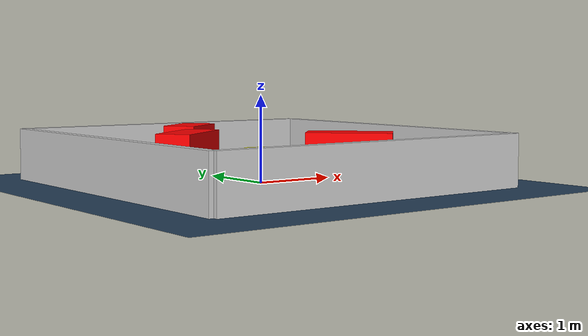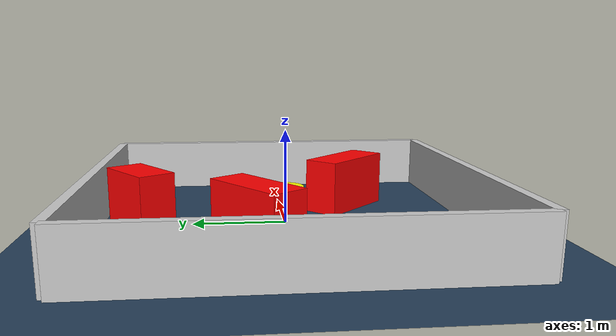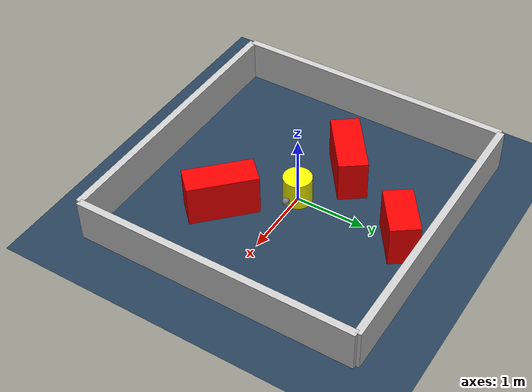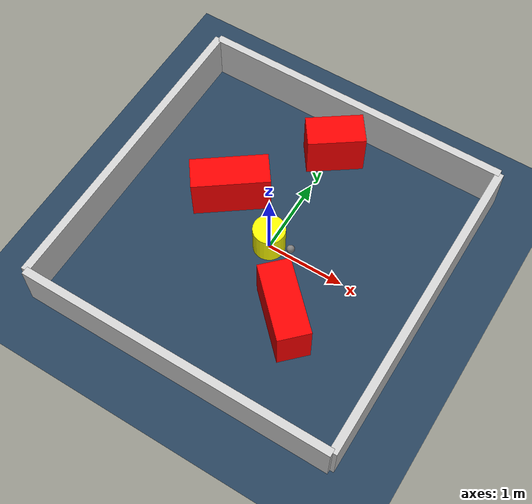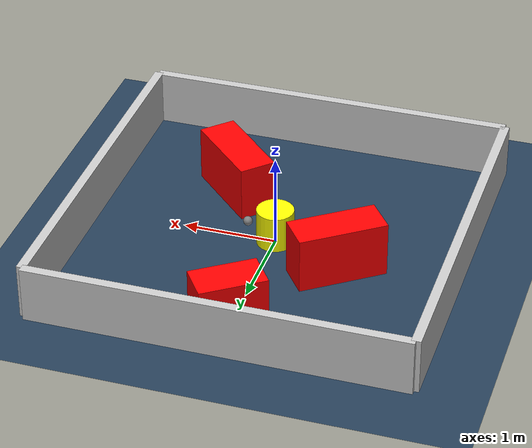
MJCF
<?xml version="1.0" ?>
<mujoco model="generated_environment">
  <option timestep="0.01" integrator="RK4" cone="elliptic"/>
  <default>
    <geom density="1"/>
  </default>
  <asset>
    <texture builtin="gradient" height="3072" rgb1="0.3 0.5 0.7" rgb2="0 0 0" type="skybox" width="512"/>
    <texture builtin="checker" height="300" mark="edge" markrgb="0.8 0.8 0.8" name="groundplane" rgb1="0.2 0.3 0.4" rgb2="0.1 0.2 0.3" type="2d" width="300"/>
    <material name="groundplane" reflectance="0.2" texrepeat="5 5" texture="groundplane" texuniform="true"/>
    <material name="robot" rgba="0.0 1.0 0.0 1"/>
  </asset>
  <worldbody>
    <light dir="0 0 -1" directional="true" pos="0 0 1.5"/>
    <geom condim="4" friction="1.0 0.005 0.001" material="groundplane" name="floor" size="0 0 0.05" type="plane"/>
    <body name="walls">
      <geom name="wall_1" condim="4" pos="-2.0 0.0 0.3" rgba="0.800000011920929 0.800000011920929 0.800000011920929 1.0" size="0.05 2.0 0.3" type="box"/>
      <geom name="wall_2" condim="4" pos="2.0 0.0 0.3" rgba="0.800000011920929 0.800000011920929 0.800000011920929 1.0" size="0.05 2.0 0.3" type="box"/>
      <geom name="wall_3" condim="4" pos="0.0 -2.0 0.3" rgba="0.800000011920929 0.800000011920929 0.800000011920929 1.0" size="2.0 0.05 0.3" type="box"/>
      <geom name="wall_4" condim="4" pos="0.0 2.0 0.3" rgba="0.800000011920929 0.800000011920929 0.800000011920929 1.0" size="2.0 0.05 0.3" type="box"/>
    </body>
    <body name="robot">
      <joint name="joint_x" type="slide" pos="0 0 0" axis="1 0 0"/>
      <joint name="joint_y" type="slide" pos="0 0 0" axis="0 1 0"/>
      <geom name="robot" type="sphere" pos="0.3 0.0 0.2" size="0.05" mass="5." friction="1.0 0.005 0.0001" condim="4" rgba="0.5 0.5 0.5 1.0"/>
      <site name="sensor_ball"/>
    </body>
    <body name="obstacle_movable_1">
      <geom name="obstacle_movable_1" condim="4" pos="0.0 0.0 0.2" euler="0 0 0.0" friction="1.0 0.005 0.001" rgba="1.0 1.0 0.0 1.0" size="0.2 0.2 0.0" type="cylinder" mass="0.1"/>
      <joint type="free"/>
    </body>
    <body name="obstacle_2_static">
      <geom name="obstacle_2_static" condim="4" pos="0.6675217740822557 -0.7680078792722613 0.3" euler="0 0 135.36455858812116" friction="1.0 0.005 0.001" rgba="1 0 0 1" size="0.4805356962287328 0.2 0.3" type="box"/>
    </body>
    <body name="obstacle_3_static">
      <geom name="obstacle_3_static" condim="4" pos="0.011964362798030148 1.5292167262398688 0.3" euler="0 0 35.497711453189574" friction="1.0 0.005 0.001" rgba="1 0 0 1" size="0.35865289206693024 0.2 0.3" type="box"/>
    </body>
    <body name="obstacle_4_static">
      <geom name="obstacle_4_static" condim="4" pos="-0.763681204204851 0.34052203115683866 0.3" euler="0 0 36.41881418260175" friction="1.0 0.005 0.001" rgba="1 0 0 1" size="0.47840441889556534 0.2 0.3" type="box"/>
    </body>
  </worldbody>
  <actuator>
    <motor name="actuator_x" joint="joint_x" gear="1" ctrlrange="-1 1"/>
    <motor name="actuator_y" joint="joint_y" gear="1" ctrlrange="-1 1"/>
  </actuator>
</mujoco>
